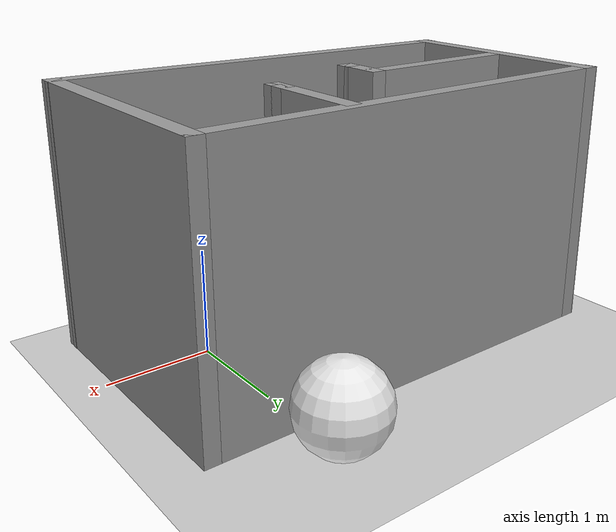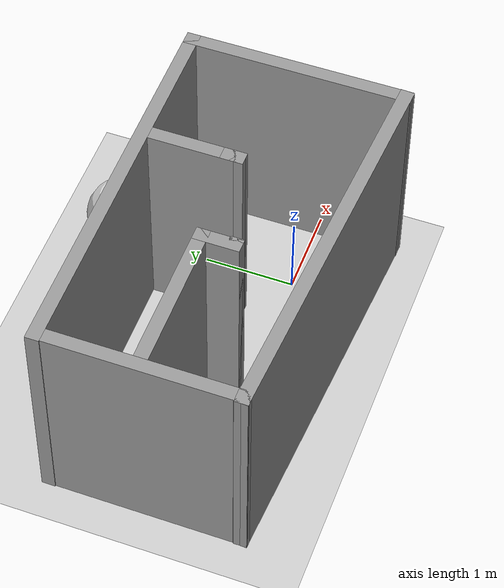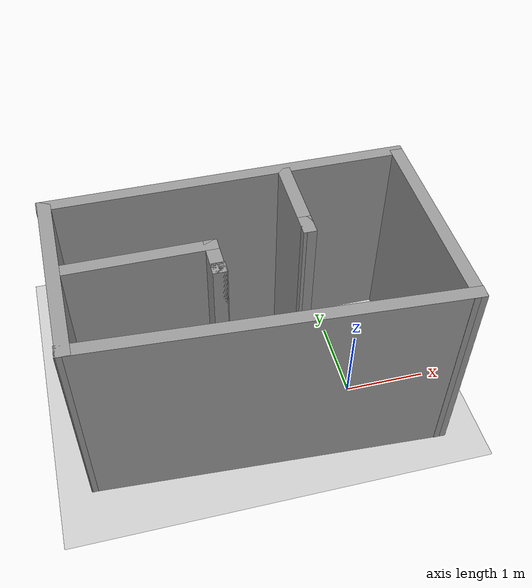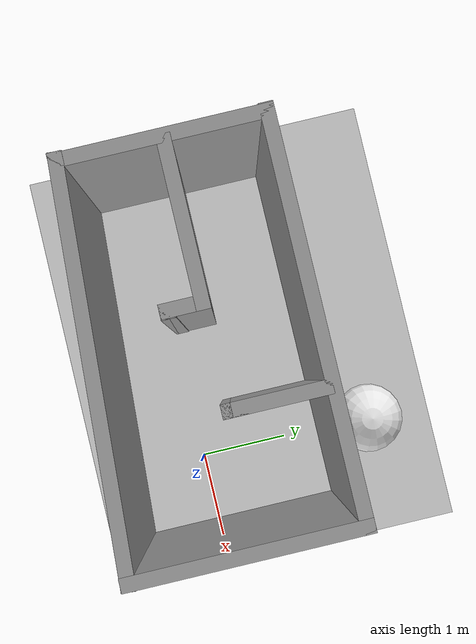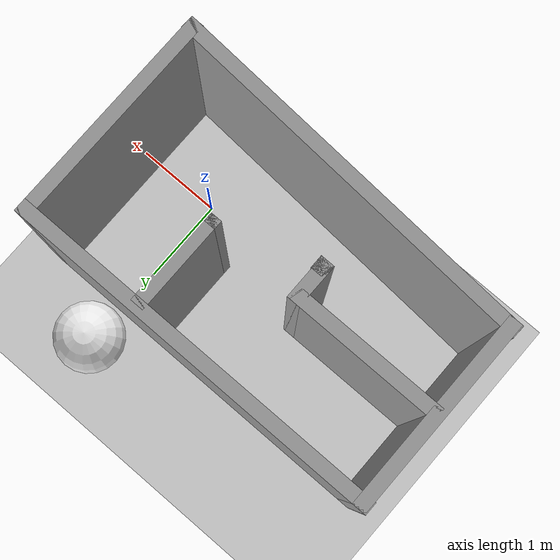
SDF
<sdf version="1.6">
 <world name="my_world">
  <model name="ball">
   <link name="link_0">
    <inertial>
     <mass>1</mass>
     <inertia><ixx>0.064</ixx><ixy>0</ixy><ixz>0</ixz><iyy>0.064</iyy><iyz>0</iyz><izz>0.064</izz></inertia>
    </inertial>
    <pose>-4e-06 -1e-06 -0 0 -0 0</pose>
    <visual name="visual">
     <geometry><sphere><radius>0.4</radius></sphere></geometry>
     <material>
      <lighting>1</lighting>
      <script><uri>file://media/materials/scripts/gazebo.material</uri><name>Gazebo/White</name></script>
      <shader type="pixel"><normal_map>__default__</normal_map></shader>
      <ambient>1 1 1 1</ambient>
      <diffuse>0.7 0.7 0.7 1</diffuse>
      <specular>0.01 0.01 0.01 1</specular>
      <emissive>0 0 0 1</emissive>
     </material>
     <cast_shadows>0</cast_shadows>
    </visual>
    <collision name="collision">
     <geometry><sphere><radius>0.4</radius></sphere></geometry>
     <surface>
      <friction>
       <ode><mu>1</mu><mu2>1</mu2><fdir1>0 0 0</fdir1><slip1>0</slip1><slip2>0</slip2></ode>
       <torsional>
        <coefficient>1</coefficient>
        <patch_radius>0</patch_radius>
        <surface_radius>0</surface_radius>
        <use_patch_radius>1</use_patch_radius>
        <ode><slip>0</slip></ode>
       </torsional>
      </friction>
      <bounce><restitution_coefficient>0</restitution_coefficient><threshold>1e+06</threshold></bounce>
      <contact>
       <collide_without_contact>0</collide_without_contact>
       <collide_without_contact_bitmask>1</collide_without_contact_bitmask>
       <collide_bitmask>1</collide_bitmask>
       <ode>
        <soft_cfm>0</soft_cfm>
        <soft_erp>0.2</soft_erp>
        <kp>1e+13</kp>
        <kd>1</kd>
        <max_vel>0.01</max_vel>
        <min_depth>0</min_depth>
       </ode>
       <bullet>
        <split_impulse>1</split_impulse>
        <split_impulse_penetration_threshold>-0.01</split_impulse_penetration_threshold>
        <soft_cfm>0</soft_cfm>
        <soft_erp>0.2</soft_erp>
        <kp>1e+13</kp>
        <kd>1</kd>
       </bullet>
      </contact>
     </surface>
    </collision>
   </link>
   <static>0</static>
   <pose>0 2 0.4 0 -0 0</pose>
  </model>
  <light name="sun" type="directional">
   <pose>0 0 10 0 -0 0</pose>
   <diffuse>0.8 0.8 0.8 1</diffuse>
   <specular>0.2 0.2 0.2 1</specular>
   <attenuation>
    <range>1000</range>
    <constant>0.9</constant>
    <linear>0.01</linear>
    <quadratic>0.001</quadratic>
   </attenuation>
   <direction>-0.5 0.1 -0.9</direction>
  </light>
  <model name="ground_plane">
   <static>1</static>
   <link name="link">
    <collision name="collision">
     <geometry><plane><normal>0 0 1</normal><size>100 100</size></plane></geometry>
     <surface><friction><ode><mu>100</mu><mu2>50</mu2></ode></friction></surface>
    </collision>
    <visual name="visual">
     <cast_shadows>0</cast_shadows>
     <geometry><plane><normal>0 0 1</normal><size>100 100</size></plane></geometry>
     <material>
      <script><uri>file://media/materials/scripts/gazebo.material</uri><name>Gazebo/Grey</name></script>
     </material>
    </visual>
   </link>
  </model>
  <model name="My_Home">
   <pose>-1.20087 0.301834 0 0 -0 0</pose>
   <link name="Wall_0">
    <collision name="Wall_0_Collision">
     <geometry><box><size>2.25 0.15 2.5</size></box></geometry>
     <pose>0 0 1.25 0 -0 0</pose>
    </collision>
    <visual name="Wall_0_Visual">
     <pose>0 0 1.25 0 -0 0</pose>
     <geometry><box><size>2.25 0.15 2.5</size></box></geometry>
     <material>
      <script><uri>file://media/materials/scripts/gazebo.material</uri><name>Gazebo/Grey</name></script>
      <ambient>1 1 1 1</ambient>
     </material>
     <meta><layer>0</layer></meta>
    </visual>
    <pose>-2.05 0.127202 0 0 -0 1.5708</pose>
   </link>
   <link name="Wall_1">
    <collision name="Wall_1_Collision">
     <geometry><box><size>4.27 0.15 2.5</size></box></geometry>
     <pose>0 0 1.25 0 -0 0</pose>
    </collision>
    <visual name="Wall_1_Visual">
     <pose>0 0 1.25 0 -0 0</pose>
     <geometry><box><size>4.27 0.15 2.5</size></box></geometry>
     <material>
      <script><uri>file://media/materials/scripts/gazebo.material</uri><name>Gazebo/Grey</name></script>
      <ambient>1 1 1 1</ambient>
     </material>
     <meta><layer>0</layer></meta>
    </visual>
    <pose>-0 1.1772 0 0 -0 0</pose>
   </link>
   <link name="Wall_10">
    <collision name="Wall_10_Collision">
     <geometry><box><size>1.75 0.15 2.5</size></box></geometry>
     <pose>0 0 1.25 0 -0 0</pose>
    </collision>
    <visual name="Wall_10_Visual">
     <pose>0 0 1.25 0 -0 0</pose>
     <geometry><box><size>1.75 0.15 2.5</size></box></geometry>
     <material>
      <script><uri>file://media/materials/scripts/gazebo.material</uri><name>Gazebo/Grey</name></script>
      <ambient>1 1 1 1</ambient>
     </material>
     <meta><layer>0</layer></meta>
    </visual>
    <pose>-1.19 0.137202 0 0 -0 0</pose>
   </link>
   <link name="Wall_11">
    <collision name="Wall_11_Collision">
     <geometry><box><size>0.5 0.15 2.5</size></box></geometry>
     <pose>0 0 1.25 0 -0 0</pose>
    </collision>
    <visual name="Wall_11_Visual">
     <pose>0 0 1.25 0 -0 0</pose>
     <geometry><box><size>0.5 0.15 2.5</size></box></geometry>
     <material>
      <script><uri>file://media/materials/scripts/gazebo.material</uri><name>Gazebo/Grey</name></script>
      <ambient>1 1 1 1</ambient>
     </material>
     <meta><layer>0</layer></meta>
    </visual>
    <pose>-0.39 -0.037798 0 0 -0 -1.5708</pose>
   </link>
   <link name="Wall_12">
    <collision name="Wall_12_Collision">
     <geometry><box><size>0.15 0.15 2.5</size></box></geometry>
     <pose>0 0 1.25 0 -0 0</pose>
    </collision>
    <visual name="Wall_12_Visual">
     <pose>0 0 1.25 0 -0 0</pose>
     <geometry><box><size>0.15 0.15 2.5</size></box></geometry>
     <material>
      <script><uri>file://media/materials/scripts/gazebo.material</uri><name>Gazebo/Grey</name></script>
      <ambient>1 1 1 1</ambient>
     </material>
     <meta><layer>0</layer></meta>
    </visual>
    <pose>-0.39 -0.212798 0 0 -0 0</pose>
   </link>
   <link name="Wall_13">
    <collision name="Wall_13_Collision">
     <geometry><box><size>0.16 0.15 2.5</size></box></geometry>
     <pose>0 0 1.25 0 -0 0</pose>
    </collision>
    <visual name="Wall_13_Visual">
     <pose>0 0 1.25 0 -0 0</pose>
     <geometry><box><size>0.16 0.15 2.5</size></box></geometry>
     <material>
      <script><uri>file://media/materials/scripts/gazebo.material</uri><name>Gazebo/Grey</name></script>
      <ambient>1 1 1 1</ambient>
     </material>
     <meta><layer>0</layer></meta>
    </visual>
    <pose>-0.385 -0.212798 0 0 -0 0</pose>
   </link>
   <link name="Wall_14">
    <collision name="Wall_14_Collision">
     <geometry><box><size>0.16 0.15 2.5</size></box></geometry>
     <pose>0 0 1.25 0 -0 0</pose>
    </collision>
    <visual name="Wall_14_Visual">
     <pose>0 0 1.25 0 -0 0</pose>
     <geometry><box><size>0.16 0.15 2.5</size></box></geometry>
     <material>
      <script><uri>file://media/materials/scripts/gazebo.material</uri><name>Gazebo/Grey</name></script>
      <ambient>1 1 1 1</ambient>
     </material>
     <meta><layer>0</layer></meta>
    </visual>
    <pose>-0.385 -0.212798 0 0 -0 3.14159</pose>
   </link>
   <link name="Wall_16">
    <collision name="Wall_16_Collision">
     <geometry><box><size>1 0.15 2.5</size></box></geometry>
     <pose>0 0 1.25 0 -0 0</pose>
    </collision>
    <visual name="Wall_16_Visual">
     <pose>0 0 1.25 0 -0 0</pose>
     <geometry><box><size>1 0.15 2.5</size></box></geometry>
     <material>
      <script><uri>file://media/materials/scripts/gazebo.material</uri><name>Gazebo/Grey</name></script>
      <ambient>1 1 1 1</ambient>
     </material>
     <meta><layer>0</layer></meta>
    </visual>
    <pose>0.68 0.672202 0 0 -0 -1.5708</pose>
   </link>
   <link name="Wall_17">
    <collision name="Wall_17_Collision">
     <geometry><box><size>0.25 0.15 2.5</size></box></geometry>
     <pose>0 0 1.25 0 -0 0</pose>
    </collision>
    <visual name="Wall_17_Visual">
     <pose>0 0 1.25 0 -0 0</pose>
     <geometry><box><size>0.25 0.15 2.5</size></box></geometry>
     <material>
      <script><uri>file://media/materials/scripts/gazebo.material</uri><name>Gazebo/Grey</name></script>
      <ambient>1 1 1 1</ambient>
     </material>
     <meta><layer>0</layer></meta>
    </visual>
    <pose>0.68 0.197202 0 0 -0 -1.5708</pose>
   </link>
   <link name="Wall_18">
    <collision name="Wall_18_Collision">
     <geometry><box><size>0.25 0.15 2.5</size></box></geometry>
     <pose>0 0 1.25 0 -0 0</pose>
    </collision>
    <visual name="Wall_18_Visual">
     <pose>0 0 1.25 0 -0 0</pose>
     <geometry><box><size>0.25 0.15 2.5</size></box></geometry>
     <material>
      <script><uri>file://media/materials/scripts/gazebo.material</uri><name>Gazebo/Grey</name></script>
      <ambient>1 1 1 1</ambient>
     </material>
     <meta><layer>0</layer></meta>
    </visual>
    <pose>0.68 0.197202 0 0 -0 1.5708</pose>
   </link>
   <link name="Wall_2">
    <collision name="Wall_2_Collision">
     <geometry><box><size>2.5 0.15 2.5</size></box></geometry>
     <pose>0 0 1.25 0 -0 0</pose>
    </collision>
    <visual name="Wall_2_Visual">
     <pose>0 0 1.25 0 -0 0</pose>
     <geometry><box><size>2.5 0.15 2.5</size></box></geometry>
     <material>
      <script><uri>file://media/materials/scripts/gazebo.material</uri><name>Gazebo/Grey</name></script>
      <ambient>1 1 1 1</ambient>
     </material>
     <meta><layer>0</layer></meta>
    </visual>
    <pose>2.06 0.002202 0 0 -0 -1.5708</pose>
   </link>
   <link name="Wall_3">
    <collision name="Wall_3_Collision">
     <geometry><box><size>4.27758 0.15 2.5</size></box></geometry>
     <pose>0 0 1.25 0 -0 0</pose>
    </collision>
    <visual name="Wall_3_Visual">
     <pose>0 0 1.25 0 -0 0</pose>
     <geometry><box><size>4.27758 0.15 2.5</size></box></geometry>
     <material>
      <script><uri>file://media/materials/scripts/gazebo.material</uri><name>Gazebo/Grey</name></script>
      <ambient>1 1 1 1</ambient>
     </material>
     <meta><layer>0</layer></meta>
    </visual>
    <pose>-0 -1.0478 0 0 -0 3.08099</pose>
   </link>
   <link name="Wall_4">
    <collision name="Wall_4_Collision">
     <geometry><box><size>0.15 0.15 2.5</size></box></geometry>
     <pose>0 0 1.25 0 -0 0</pose>
    </collision>
    <visual name="Wall_4_Visual">
     <pose>0 0 1.25 0 -0 0</pose>
     <geometry><box><size>0.15 0.15 2.5</size></box></geometry>
     <material>
      <script><uri>file://media/materials/scripts/gazebo.material</uri><name>Gazebo/Grey</name></script>
      <ambient>1 1 1 1</ambient>
     </material>
     <meta><layer>0</layer></meta>
    </visual>
    <pose>-2.06 -0.922798 0 0 -0 0</pose>
   </link>
   <static>1</static>
  </model>
  <gravity>0 0 -9.8</gravity>
  <magnetic_field>6e-06 2.3e-05 -4.2e-05</magnetic_field>
  <atmosphere type="adiabatic"/>
  <physics name="default_physics" default="0" type="ode">
   <max_step_size>0.001</max_step_size>
   <real_time_factor>1</real_time_factor>
   <real_time_update_rate>1000</real_time_update_rate>
  </physics>
  <scene><ambient>0.4 0.4 0.4 1</ambient><background>0.7 0.7 0.7 1</background><shadows>1</shadows></scene>
  <spherical_coordinates>
   <surface_model>EARTH_WGS84</surface_model>
   <latitude_deg>0</latitude_deg>
   <longitude_deg>0</longitude_deg>
   <elevation>0</elevation>
   <heading_deg>0</heading_deg>
  </spherical_coordinates>
 </world>
</sdf>
